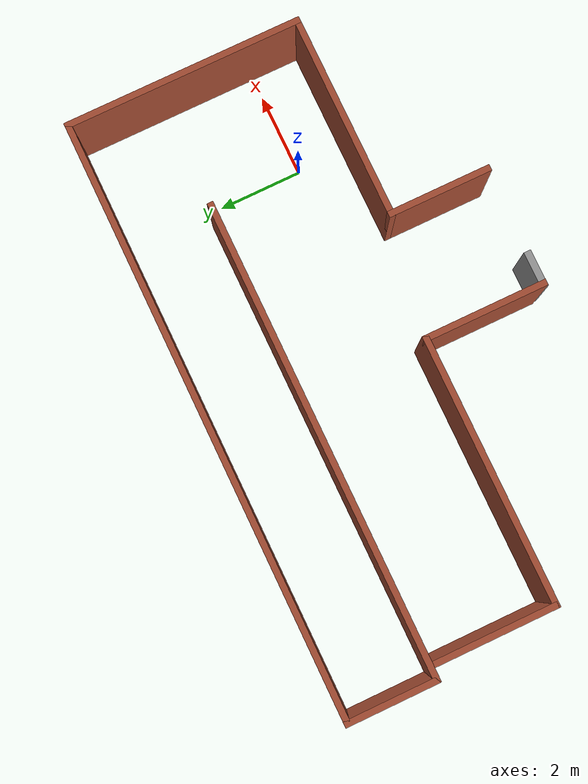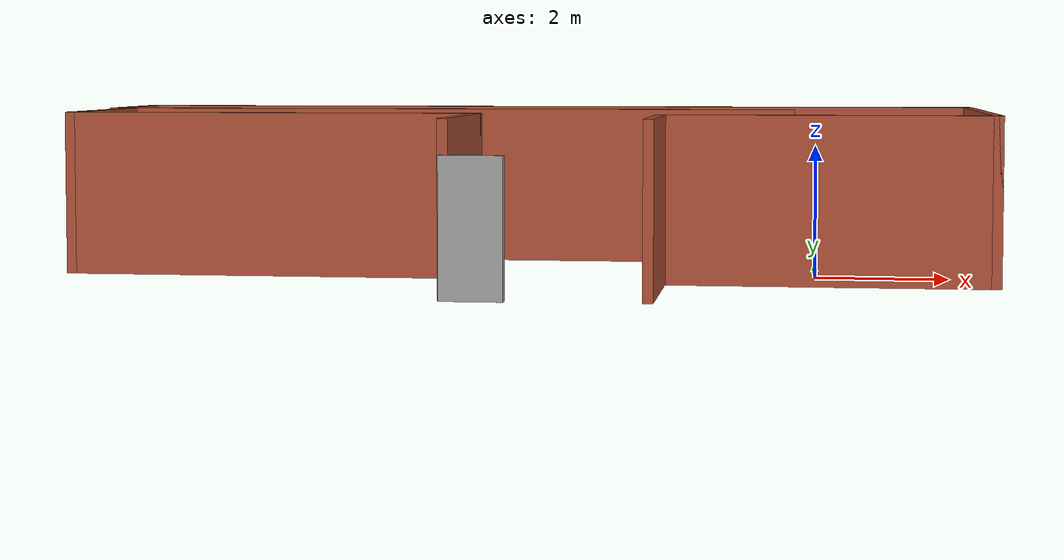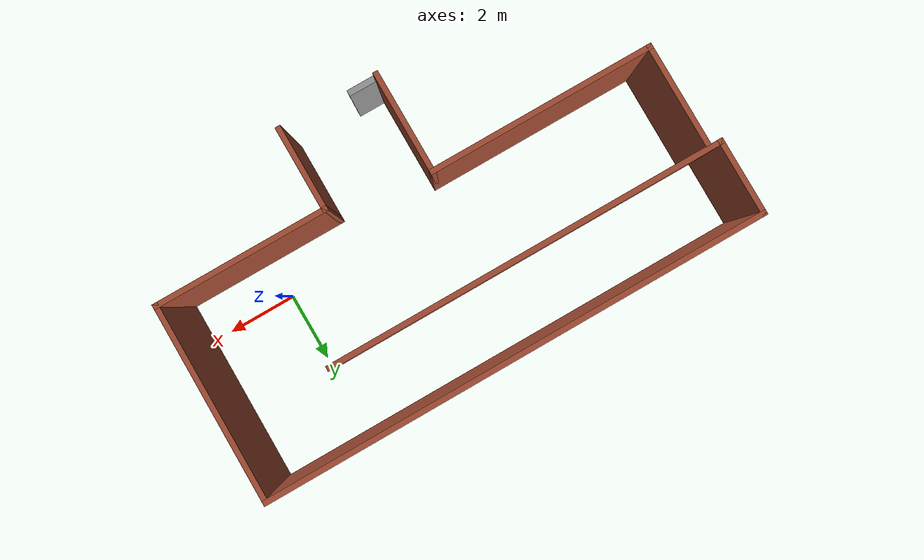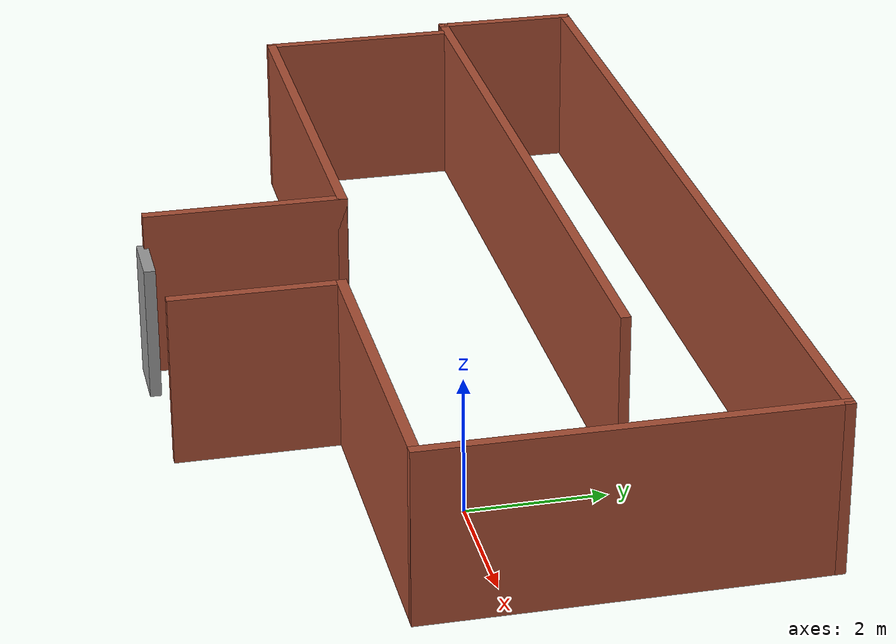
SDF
<?xml version='1.0'?>
<sdf version='1.6'>
  <model name='indoors'>
    <pose frame=''>-4.585 0.425 0 0 -0 0</pose>
    <link name='Door_0'>
      <collision name='Door_0_Collision'>
        <geometry>
          <box>
            <size>0.9 0.17 2</size>
          </box>
        </geometry>
        <pose frame=''>0 0 1 0 -0 0</pose>
      </collision>
      <visual name='Door_0_Visual'>
        <pose frame=''>0 0 1 0 -0 0</pose>
        <geometry>
          <box>
            <size>0.9 0.17 2</size>
          </box>
        </geometry>
        <material>
          <script>
            <uri>file://media/materials/scripts/gazebo.material</uri>
            <name>Gazebo/Grey</name>
          </script>
        </material>
      </visual>
      <pose frame=''>-0.094402 -4.05069 0 0 -0 0</pose>
    </link>
    <link name='Wall_0'>
      <collision name='Wall_0_Collision'>
        <geometry>
          <box>
            <size>5 0.15 2.5</size>
          </box>
        </geometry>
        <pose frame=''>0 0 1.25 0 -0 0</pose>
      </collision>
      <visual name='Wall_0_Visual'>
        <pose frame=''>0 0 1.25 0 -0 0</pose>
        <geometry>
          <box>
            <size>5 0.15 2.5</size>
          </box>
        </geometry>
        <material>
          <script>
            <uri>file://media/materials/scripts/gazebo.material</uri>
            <name>Gazebo/Bricks</name>
          </script>
          <ambient>1 1 1 1</ambient>
        </material>
      </visual>
      <pose frame=''>4.75 -1.625 0 0 -0 0</pose>
    </link>
    <link name='Wall_10'>
      <collision name='Wall_10_Collision'>
        <geometry>
          <box>
            <size>3 0.15 2.5</size>
          </box>
        </geometry>
        <pose frame=''>0 0 1.25 0 -0 0</pose>
      </collision>
      <visual name='Wall_10_Visual'>
        <pose frame=''>0 0 1.25 0 -0 0</pose>
        <geometry>
          <box>
            <size>3 0.15 2.5</size>
          </box>
        </geometry>
        <material>
          <script>
            <uri>file://media/materials/scripts/gazebo.material</uri>
            <name>Gazebo/Bricks</name>
          </script>
          <ambient>1 1 1 1</ambient>
        </material>
      </visual>
      <pose frame=''>-0.498725 -2.53388 0 0 0 -1.5708</pose>
    </link>
    <link name='Wall_12'>
      <collision name='Wall_12_Collision'>
        <geometry>
          <box>
            <size>2.5 0.15 2.5</size>
          </box>
        </geometry>
        <pose frame=''>0 0 1.25 0 -0 0</pose>
      </collision>
      <visual name='Wall_12_Visual'>
        <pose frame=''>0 0 1.25 0 -0 0</pose>
        <geometry>
          <box>
            <size>2.5 0.15 2.5</size>
          </box>
        </geometry>
        <material>
          <script>
            <uri>file://media/materials/scripts/gazebo.material</uri>
            <name>Gazebo/Bricks</name>
          </script>
          <ambient>1 1 1 1</ambient>
        </material>
      </visual>
      <pose frame=''>2.325 -2.8 0 0 0 -1.5708</pose>
    </link>
    <link name='Wall_2'>
      <collision name='Wall_2_Collision'>
        <geometry>
          <box>
            <size>5.75 0.15 2.5</size>
          </box>
        </geometry>
        <pose frame=''>0 0 1.25 0 -0 0</pose>
      </collision>
      <visual name='Wall_2_Visual'>
        <pose frame=''>0 0 1.25 0 -0 0</pose>
        <geometry>
          <box>
            <size>5.75 0.15 2.5</size>
          </box>
        </geometry>
        <material>
          <script>
            <uri>file://media/materials/scripts/gazebo.material</uri>
            <name>Gazebo/Bricks</name>
          </script>
          <ambient>1 1 1 1</ambient>
        </material>
      </visual>
      <pose frame=''>7.175 1.175 0 0 -0 1.5708</pose>
    </link>
    <link name='Wall_3'>
      <collision name='Wall_3_Collision'>
        <geometry>
          <box>
            <size>14.5 0.15 2.5</size>
          </box>
        </geometry>
        <pose frame=''>0 0 1.25 0 -0 0</pose>
      </collision>
      <visual name='Wall_3_Visual'>
        <pose frame=''>0 0 1.25 0 -0 0</pose>
        <geometry>
          <box>
            <size>14.5 0.15 2.5</size>
          </box>
        </geometry>
        <material>
          <script>
            <uri>file://media/materials/scripts/gazebo.material</uri>
            <name>Gazebo/Bricks</name>
          </script>
          <ambient>1 1 1 1</ambient>
        </material>
      </visual>
      <pose frame=''>0 3.975 0 0 -0 3.14159</pose>
    </link>
    <link name='Wall_4'>
      <collision name='Wall_4_Collision'>
        <geometry>
          <box>
            <size>2.25 0.15 2.5</size>
          </box>
        </geometry>
        <pose frame=''>0 0 1.25 0 -0 0</pose>
      </collision>
      <visual name='Wall_4_Visual'>
        <pose frame=''>0 0 1.25 0 -0 0</pose>
        <geometry>
          <box>
            <size>2.25 0.15 2.5</size>
          </box>
        </geometry>
        <material>
          <script>
            <uri>file://media/materials/scripts/gazebo.material</uri>
            <name>Gazebo/Bricks</name>
          </script>
          <ambient>1 1 1 1</ambient>
        </material>
      </visual>
      <pose frame=''>-7.175 2.925 0 0 0 -1.5708</pose>
    </link>
    <link name='Wall_5'>
      <collision name='Wall_5_Collision'>
        <geometry>
          <box>
            <size>11.5 0.15 2.5</size>
          </box>
        </geometry>
        <pose frame=''>0 0 1.25 0 -0 0</pose>
      </collision>
      <visual name='Wall_5_Visual'>
        <pose frame=''>0 0 1.25 0 -0 0</pose>
        <geometry>
          <box>
            <size>11.5 0.15 2.5</size>
          </box>
        </geometry>
        <material>
          <script>
            <uri>file://media/materials/scripts/gazebo.material</uri>
            <name>Gazebo/Bricks</name>
          </script>
          <ambient>1 1 1 1</ambient>
        </material>
      </visual>
      <pose frame=''>-1.5 1.875 0 0 -0 0</pose>
    </link>
    <link name='Wall_8'>
      <collision name='Wall_8_Collision'>
        <geometry>
          <box>
            <size>3 0.15 2.5</size>
          </box>
        </geometry>
        <pose frame=''>0 0 1.25 0 -0 0</pose>
      </collision>
      <visual name='Wall_8_Visual'>
        <pose frame=''>0 0 1.25 0 -0 0</pose>
        <geometry>
          <box>
            <size>3 0.15 2.5</size>
          </box>
        </geometry>
        <material>
          <script>
            <uri>file://media/materials/scripts/gazebo.material</uri>
            <name>Gazebo/Bricks</name>
          </script>
          <ambient>1 1 1 1</ambient>
        </material>
      </visual>
      <pose frame=''>-6.84872 0.316119 0 0 0 -1.5708</pose>
    </link>
    <link name='Wall_9'>
      <collision name='Wall_9_Collision'>
        <geometry>
          <box>
            <size>6.5 0.15 2.5</size>
          </box>
        </geometry>
        <pose frame=''>0 0 1.25 0 -0 0</pose>
      </collision>
      <visual name='Wall_9_Visual'>
        <pose frame=''>0 0 1.25 0 -0 0</pose>
        <geometry>
          <box>
            <size>6.5 0.15 2.5</size>
          </box>
        </geometry>
        <material>
          <script>
            <uri>file://media/materials/scripts/gazebo.material</uri>
            <name>Gazebo/Bricks</name>
          </script>
          <ambient>1 1 1 1</ambient>
        </material>
      </visual>
      <pose frame=''>-3.67372 -1.10888 0 0 -0 0</pose>
    </link>
    <static>1</static>
  </model>
</sdf>
